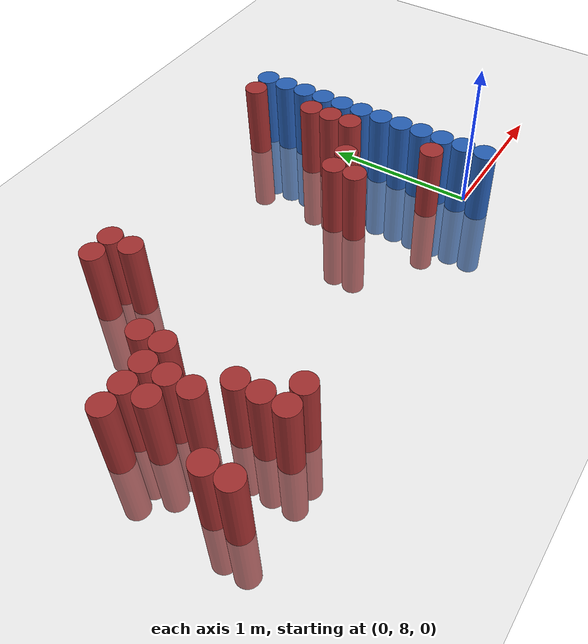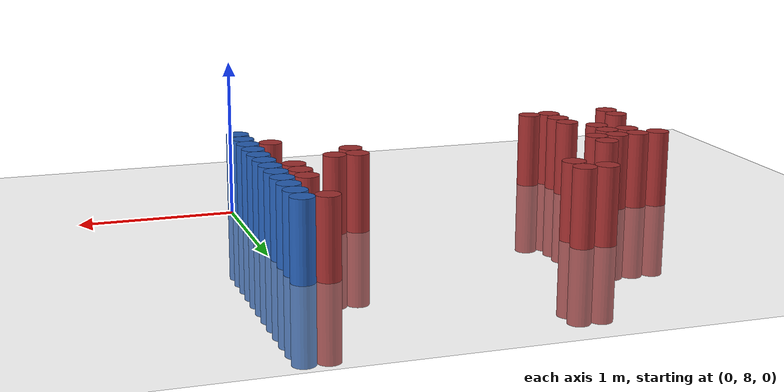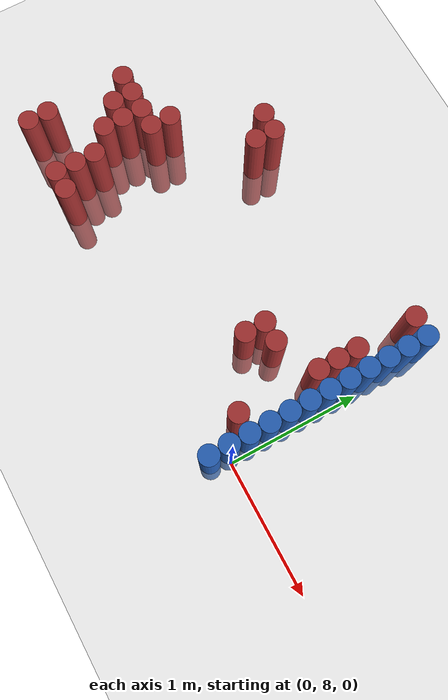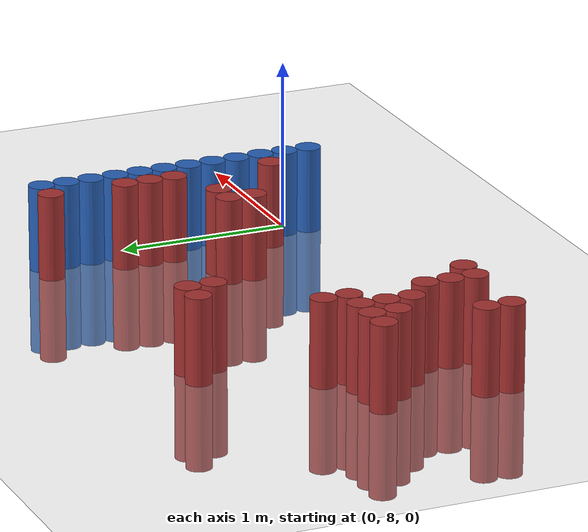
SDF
<sdf version="1.6">
 <world name="default">
  <model name="ground_plane">
   <static>1</static>
   <link name="link">
    <collision name="collision">
     <geometry><plane><normal>0 0 1</normal><size>100 100</size></plane></geometry>
     <surface><friction><ode><mu>100</mu><mu2>50</mu2></ode></friction></surface>
    </collision>
    <visual name="visual">
     <cast_shadows>0</cast_shadows>
     <geometry><plane><normal>0 0 1</normal><size>100 100</size></plane></geometry>
     <material>
      <script><uri>file://media/materials/scripts/gazebo.material</uri><name>Gazebo/Grey</name></script>
     </material>
    </visual>
   </link>
  </model>
  <model name="unit_cylinder_208">
   <static>1</static>
   <pose>-2.775000 7.875000 0.000000 0.000000 0.000000 0.000000</pose>
   <link name="link">
    <inertial>
     <mass>1</mass>
     <inertia><ixx>0.145833</ixx><ixy>0</ixy><ixz>0</ixz><iyy>0.145833</iyy><iyz>0</iyz><izz>0.125</izz></inertia>
    </inertial>
    <collision name="collision">
     <geometry><cylinder><radius>0.075000</radius><length>1</length></cylinder></geometry>
    </collision>
    <visual name="visual">
     <geometry><cylinder><radius>0.075000</radius><length>1</length></cylinder></geometry>
     <material>
      <ambient>0.648000 0.192000 0.192000 1</ambient>
      <diffuse>0.648000 0.192000 0.192000 1</diffuse>
     </material>
     <material>
      <script><name>Gazebo/Grey</name><uri>file://media/materials/scripts/gazebo.material</uri></script>
     </material>
    </visual>
    <sensor name="sensor_contact" type="contact"><contact><collision>collision</collision></contact></sensor>
   </link>
   <plugin filename="gz-sim-touchplugin-system" name="gz::sim::systems::TouchPlugin">
    <target>robot</target>
    <namespace>robot</namespace>
    <time>0.001</time>
    <enabled>true</enabled>
   </plugin>
  </model>
  <model name="unit_cylinder_209">
   <static>1</static>
   <pose>-2.775000 8.025000 0.000000 0.000000 0.000000 0.000000</pose>
   <link name="link">
    <inertial>
     <mass>1</mass>
     <inertia><ixx>0.145833</ixx><ixy>0</ixy><ixz>0</ixz><iyy>0.145833</iyy><iyz>0</iyz><izz>0.125</izz></inertia>
    </inertial>
    <collision name="collision">
     <geometry><cylinder><radius>0.075000</radius><length>1</length></cylinder></geometry>
    </collision>
    <visual name="visual">
     <geometry><cylinder><radius>0.075000</radius><length>1</length></cylinder></geometry>
     <material>
      <ambient>0.648000 0.192000 0.192000 1</ambient>
      <diffuse>0.648000 0.192000 0.192000 1</diffuse>
     </material>
     <material>
      <script><name>Gazebo/Grey</name><uri>file://media/materials/scripts/gazebo.material</uri></script>
     </material>
    </visual>
    <sensor name="sensor_contact" type="contact"><contact><collision>collision</collision></contact></sensor>
   </link>
   <plugin filename="gz-sim-touchplugin-system" name="gz::sim::systems::TouchPlugin">
    <target>robot</target>
    <namespace>robot</namespace>
    <time>0.001</time>
    <enabled>true</enabled>
   </plugin>
  </model>
  <model name="unit_cylinder_210">
   <static>1</static>
   <pose>-2.775000 8.625000 0.000000 0.000000 0.000000 0.000000</pose>
   <link name="link">
    <inertial>
     <mass>1</mass>
     <inertia><ixx>0.145833</ixx><ixy>0</ixy><ixz>0</ixz><iyy>0.145833</iyy><iyz>0</iyz><izz>0.125</izz></inertia>
    </inertial>
    <collision name="collision">
     <geometry><cylinder><radius>0.075000</radius><length>1</length></cylinder></geometry>
    </collision>
    <visual name="visual">
     <geometry><cylinder><radius>0.075000</radius><length>1</length></cylinder></geometry>
     <material>
      <ambient>0.648000 0.192000 0.192000 1</ambient>
      <diffuse>0.648000 0.192000 0.192000 1</diffuse>
     </material>
     <material>
      <script><name>Gazebo/Grey</name><uri>file://media/materials/scripts/gazebo.material</uri></script>
     </material>
    </visual>
    <sensor name="sensor_contact" type="contact"><contact><collision>collision</collision></contact></sensor>
   </link>
   <plugin filename="gz-sim-touchplugin-system" name="gz::sim::systems::TouchPlugin">
    <target>robot</target>
    <namespace>robot</namespace>
    <time>0.001</time>
    <enabled>true</enabled>
   </plugin>
  </model>
  <model name="unit_cylinder_214">
   <static>1</static>
   <pose>-2.625000 8.475000 0.000000 0.000000 0.000000 0.000000</pose>
   <link name="link">
    <inertial>
     <mass>1</mass>
     <inertia><ixx>0.145833</ixx><ixy>0</ixy><ixz>0</ixz><iyy>0.145833</iyy><iyz>0</iyz><izz>0.125</izz></inertia>
    </inertial>
    <collision name="collision">
     <geometry><cylinder><radius>0.075000</radius><length>1</length></cylinder></geometry>
    </collision>
    <visual name="visual">
     <geometry><cylinder><radius>0.075000</radius><length>1</length></cylinder></geometry>
     <material>
      <ambient>0.648000 0.192000 0.192000 1</ambient>
      <diffuse>0.648000 0.192000 0.192000 1</diffuse>
     </material>
     <material>
      <script><name>Gazebo/Grey</name><uri>file://media/materials/scripts/gazebo.material</uri></script>
     </material>
    </visual>
    <sensor name="sensor_contact" type="contact"><contact><collision>collision</collision></contact></sensor>
   </link>
   <plugin filename="gz-sim-touchplugin-system" name="gz::sim::systems::TouchPlugin">
    <target>robot</target>
    <namespace>robot</namespace>
    <time>0.001</time>
    <enabled>true</enabled>
   </plugin>
  </model>
  <model name="unit_cylinder_215">
   <static>1</static>
   <pose>-2.625000 8.625000 0.000000 0.000000 0.000000 0.000000</pose>
   <link name="link">
    <inertial>
     <mass>1</mass>
     <inertia><ixx>0.145833</ixx><ixy>0</ixy><ixz>0</ixz><iyy>0.145833</iyy><iyz>0</iyz><izz>0.125</izz></inertia>
    </inertial>
    <collision name="collision">
     <geometry><cylinder><radius>0.075000</radius><length>1</length></cylinder></geometry>
    </collision>
    <visual name="visual">
     <geometry><cylinder><radius>0.075000</radius><length>1</length></cylinder></geometry>
     <material>
      <ambient>0.648000 0.192000 0.192000 1</ambient>
      <diffuse>0.648000 0.192000 0.192000 1</diffuse>
     </material>
     <material>
      <script><name>Gazebo/Grey</name><uri>file://media/materials/scripts/gazebo.material</uri></script>
     </material>
    </visual>
    <sensor name="sensor_contact" type="contact"><contact><collision>collision</collision></contact></sensor>
   </link>
   <plugin filename="gz-sim-touchplugin-system" name="gz::sim::systems::TouchPlugin">
    <target>robot</target>
    <namespace>robot</namespace>
    <time>0.001</time>
    <enabled>true</enabled>
   </plugin>
  </model>
  <model name="unit_cylinder_216">
   <static>1</static>
   <pose>-2.475000 8.325000 0.000000 0.000000 0.000000 0.000000</pose>
   <link name="link">
    <inertial>
     <mass>1</mass>
     <inertia><ixx>0.145833</ixx><ixy>0</ixy><ixz>0</ixz><iyy>0.145833</iyy><iyz>0</iyz><izz>0.125</izz></inertia>
    </inertial>
    <collision name="collision">
     <geometry><cylinder><radius>0.075000</radius><length>1</length></cylinder></geometry>
    </collision>
    <visual name="visual">
     <geometry><cylinder><radius>0.075000</radius><length>1</length></cylinder></geometry>
     <material>
      <ambient>0.648000 0.192000 0.192000 1</ambient>
      <diffuse>0.648000 0.192000 0.192000 1</diffuse>
     </material>
     <material>
      <script><name>Gazebo/Grey</name><uri>file://media/materials/scripts/gazebo.material</uri></script>
     </material>
    </visual>
    <sensor name="sensor_contact" type="contact"><contact><collision>collision</collision></contact></sensor>
   </link>
   <plugin filename="gz-sim-touchplugin-system" name="gz::sim::systems::TouchPlugin">
    <target>robot</target>
    <namespace>robot</namespace>
    <time>0.001</time>
    <enabled>true</enabled>
   </plugin>
  </model>
  <model name="unit_cylinder_217">
   <static>1</static>
   <pose>-2.475000 8.475000 0.000000 0.000000 0.000000 0.000000</pose>
   <link name="link">
    <inertial>
     <mass>1</mass>
     <inertia><ixx>0.145833</ixx><ixy>0</ixy><ixz>0</ixz><iyy>0.145833</iyy><iyz>0</iyz><izz>0.125</izz></inertia>
    </inertial>
    <collision name="collision">
     <geometry><cylinder><radius>0.075000</radius><length>1</length></cylinder></geometry>
    </collision>
    <visual name="visual">
     <geometry><cylinder><radius>0.075000</radius><length>1</length></cylinder></geometry>
     <material>
      <ambient>0.648000 0.192000 0.192000 1</ambient>
      <diffuse>0.648000 0.192000 0.192000 1</diffuse>
     </material>
     <material>
      <script><name>Gazebo/Grey</name><uri>file://media/materials/scripts/gazebo.material</uri></script>
     </material>
    </visual>
    <sensor name="sensor_contact" type="contact"><contact><collision>collision</collision></contact></sensor>
   </link>
   <plugin filename="gz-sim-touchplugin-system" name="gz::sim::systems::TouchPlugin">
    <target>robot</target>
    <namespace>robot</namespace>
    <time>0.001</time>
    <enabled>true</enabled>
   </plugin>
  </model>
  <model name="unit_cylinder_218">
   <static>1</static>
   <pose>-2.475000 8.625000 0.000000 0.000000 0.000000 0.000000</pose>
   <link name="link">
    <inertial>
     <mass>1</mass>
     <inertia><ixx>0.145833</ixx><ixy>0</ixy><ixz>0</ixz><iyy>0.145833</iyy><iyz>0</iyz><izz>0.125</izz></inertia>
    </inertial>
    <collision name="collision">
     <geometry><cylinder><radius>0.075000</radius><length>1</length></cylinder></geometry>
    </collision>
    <visual name="visual">
     <geometry><cylinder><radius>0.075000</radius><length>1</length></cylinder></geometry>
     <material>
      <ambient>0.648000 0.192000 0.192000 1</ambient>
      <diffuse>0.648000 0.192000 0.192000 1</diffuse>
     </material>
     <material>
      <script><name>Gazebo/Grey</name><uri>file://media/materials/scripts/gazebo.material</uri></script>
     </material>
    </visual>
    <sensor name="sensor_contact" type="contact"><contact><collision>collision</collision></contact></sensor>
   </link>
   <plugin filename="gz-sim-touchplugin-system" name="gz::sim::systems::TouchPlugin">
    <target>robot</target>
    <namespace>robot</namespace>
    <time>0.001</time>
    <enabled>true</enabled>
   </plugin>
  </model>
  <model name="unit_cylinder_219">
   <static>1</static>
   <pose>-2.325000 7.875000 0.000000 0.000000 0.000000 0.000000</pose>
   <link name="link">
    <inertial>
     <mass>1</mass>
     <inertia><ixx>0.145833</ixx><ixy>0</ixy><ixz>0</ixz><iyy>0.145833</iyy><iyz>0</iyz><izz>0.125</izz></inertia>
    </inertial>
    <collision name="collision">
     <geometry><cylinder><radius>0.075000</radius><length>1</length></cylinder></geometry>
    </collision>
    <visual name="visual">
     <geometry><cylinder><radius>0.075000</radius><length>1</length></cylinder></geometry>
     <material>
      <ambient>0.648000 0.192000 0.192000 1</ambient>
      <diffuse>0.648000 0.192000 0.192000 1</diffuse>
     </material>
     <material>
      <script><name>Gazebo/Grey</name><uri>file://media/materials/scripts/gazebo.material</uri></script>
     </material>
    </visual>
    <sensor name="sensor_contact" type="contact"><contact><collision>collision</collision></contact></sensor>
   </link>
   <plugin filename="gz-sim-touchplugin-system" name="gz::sim::systems::TouchPlugin">
    <target>robot</target>
    <namespace>robot</namespace>
    <time>0.001</time>
    <enabled>true</enabled>
   </plugin>
  </model>
  <model name="unit_cylinder_220">
   <static>1</static>
   <pose>-2.325000 8.025000 0.000000 0.000000 0.000000 0.000000</pose>
   <link name="link">
    <inertial>
     <mass>1</mass>
     <inertia><ixx>0.145833</ixx><ixy>0</ixy><ixz>0</ixz><iyy>0.145833</iyy><iyz>0</iyz><izz>0.125</izz></inertia>
    </inertial>
    <collision name="collision">
     <geometry><cylinder><radius>0.075000</radius><length>1</length></cylinder></geometry>
    </collision>
    <visual name="visual">
     <geometry><cylinder><radius>0.075000</radius><length>1</length></cylinder></geometry>
     <material>
      <ambient>0.648000 0.192000 0.192000 1</ambient>
      <diffuse>0.648000 0.192000 0.192000 1</diffuse>
     </material>
     <material>
      <script><name>Gazebo/Grey</name><uri>file://media/materials/scripts/gazebo.material</uri></script>
     </material>
    </visual>
    <sensor name="sensor_contact" type="contact"><contact><collision>collision</collision></contact></sensor>
   </link>
   <plugin filename="gz-sim-touchplugin-system" name="gz::sim::systems::TouchPlugin">
    <target>robot</target>
    <namespace>robot</namespace>
    <time>0.001</time>
    <enabled>true</enabled>
   </plugin>
  </model>
  <model name="unit_cylinder_221">
   <static>1</static>
   <pose>-2.325000 8.175000 0.000000 0.000000 0.000000 0.000000</pose>
   <link name="link">
    <inertial>
     <mass>1</mass>
     <inertia><ixx>0.145833</ixx><ixy>0</ixy><ixz>0</ixz><iyy>0.145833</iyy><iyz>0</iyz><izz>0.125</izz></inertia>
    </inertial>
    <collision name="collision">
     <geometry><cylinder><radius>0.075000</radius><length>1</length></cylinder></geometry>
    </collision>
    <visual name="visual">
     <geometry><cylinder><radius>0.075000</radius><length>1</length></cylinder></geometry>
     <material>
      <ambient>0.648000 0.192000 0.192000 1</ambient>
      <diffuse>0.648000 0.192000 0.192000 1</diffuse>
     </material>
     <material>
      <script><name>Gazebo/Grey</name><uri>file://media/materials/scripts/gazebo.material</uri></script>
     </material>
    </visual>
    <sensor name="sensor_contact" type="contact"><contact><collision>collision</collision></contact></sensor>
   </link>
   <plugin filename="gz-sim-touchplugin-system" name="gz::sim::systems::TouchPlugin">
    <target>robot</target>
    <namespace>robot</namespace>
    <time>0.001</time>
    <enabled>true</enabled>
   </plugin>
  </model>
  <model name="unit_cylinder_222">
   <static>1</static>
   <pose>-2.325000 8.625000 0.000000 0.000000 0.000000 0.000000</pose>
   <link name="link">
    <inertial>
     <mass>1</mass>
     <inertia><ixx>0.145833</ixx><ixy>0</ixy><ixz>0</ixz><iyy>0.145833</iyy><iyz>0</iyz><izz>0.125</izz></inertia>
    </inertial>
    <collision name="collision">
     <geometry><cylinder><radius>0.075000</radius><length>1</length></cylinder></geometry>
    </collision>
    <visual name="visual">
     <geometry><cylinder><radius>0.075000</radius><length>1</length></cylinder></geometry>
     <material>
      <ambient>0.648000 0.192000 0.192000 1</ambient>
      <diffuse>0.648000 0.192000 0.192000 1</diffuse>
     </material>
     <material>
      <script><name>Gazebo/Grey</name><uri>file://media/materials/scripts/gazebo.material</uri></script>
     </material>
    </visual>
    <sensor name="sensor_contact" type="contact"><contact><collision>collision</collision></contact></sensor>
   </link>
   <plugin filename="gz-sim-touchplugin-system" name="gz::sim::systems::TouchPlugin">
    <target>robot</target>
    <namespace>robot</namespace>
    <time>0.001</time>
    <enabled>true</enabled>
   </plugin>
  </model>
  <model name="unit_cylinder_223">
   <static>1</static>
   <pose>-2.325000 8.775000 0.000000 0.000000 0.000000 0.000000</pose>
   <link name="link">
    <inertial>
     <mass>1</mass>
     <inertia><ixx>0.145833</ixx><ixy>0</ixy><ixz>0</ixz><iyy>0.145833</iyy><iyz>0</iyz><izz>0.125</izz></inertia>
    </inertial>
    <collision name="collision">
     <geometry><cylinder><radius>0.075000</radius><length>1</length></cylinder></geometry>
    </collision>
    <visual name="visual">
     <geometry><cylinder><radius>0.075000</radius><length>1</length></cylinder></geometry>
     <material>
      <ambient>0.648000 0.192000 0.192000 1</ambient>
      <diffuse>0.648000 0.192000 0.192000 1</diffuse>
     </material>
     <material>
      <script><name>Gazebo/Grey</name><uri>file://media/materials/scripts/gazebo.material</uri></script>
     </material>
    </visual>
    <sensor name="sensor_contact" type="contact"><contact><collision>collision</collision></contact></sensor>
   </link>
   <plugin filename="gz-sim-touchplugin-system" name="gz::sim::systems::TouchPlugin">
    <target>robot</target>
    <namespace>robot</namespace>
    <time>0.001</time>
    <enabled>true</enabled>
   </plugin>
  </model>
  <model name="unit_cylinder_225">
   <static>1</static>
   <pose>-2.175000 7.875000 0.000000 0.000000 0.000000 0.000000</pose>
   <link name="link">
    <inertial>
     <mass>1</mass>
     <inertia><ixx>0.145833</ixx><ixy>0</ixy><ixz>0</ixz><iyy>0.145833</iyy><iyz>0</iyz><izz>0.125</izz></inertia>
    </inertial>
    <collision name="collision">
     <geometry><cylinder><radius>0.075000</radius><length>1</length></cylinder></geometry>
    </collision>
    <visual name="visual">
     <geometry><cylinder><radius>0.075000</radius><length>1</length></cylinder></geometry>
     <material>
      <ambient>0.648000 0.192000 0.192000 1</ambient>
      <diffuse>0.648000 0.192000 0.192000 1</diffuse>
     </material>
     <material>
      <script><name>Gazebo/Grey</name><uri>file://media/materials/scripts/gazebo.material</uri></script>
     </material>
    </visual>
    <sensor name="sensor_contact" type="contact"><contact><collision>collision</collision></contact></sensor>
   </link>
   <plugin filename="gz-sim-touchplugin-system" name="gz::sim::systems::TouchPlugin">
    <target>robot</target>
    <namespace>robot</namespace>
    <time>0.001</time>
    <enabled>true</enabled>
   </plugin>
  </model>
  <model name="unit_cylinder_227">
   <static>1</static>
   <pose>-2.025000 9.375000 0.000000 0.000000 0.000000 0.000000</pose>
   <link name="link">
    <inertial>
     <mass>1</mass>
     <inertia><ixx>0.145833</ixx><ixy>0</ixy><ixz>0</ixz><iyy>0.145833</iyy><iyz>0</iyz><izz>0.125</izz></inertia>
    </inertial>
    <collision name="collision">
     <geometry><cylinder><radius>0.075000</radius><length>1</length></cylinder></geometry>
    </collision>
    <visual name="visual">
     <geometry><cylinder><radius>0.075000</radius><length>1</length></cylinder></geometry>
     <material>
      <ambient>0.648000 0.192000 0.192000 1</ambient>
      <diffuse>0.648000 0.192000 0.192000 1</diffuse>
     </material>
     <material>
      <script><name>Gazebo/Grey</name><uri>file://media/materials/scripts/gazebo.material</uri></script>
     </material>
    </visual>
    <sensor name="sensor_contact" type="contact"><contact><collision>collision</collision></contact></sensor>
   </link>
   <plugin filename="gz-sim-touchplugin-system" name="gz::sim::systems::TouchPlugin">
    <target>robot</target>
    <namespace>robot</namespace>
    <time>0.001</time>
    <enabled>true</enabled>
   </plugin>
  </model>
  <model name="unit_cylinder_228">
   <static>1</static>
   <pose>-1.875000 9.225000 0.000000 0.000000 0.000000 0.000000</pose>
   <link name="link">
    <inertial>
     <mass>1</mass>
     <inertia><ixx>0.145833</ixx><ixy>0</ixy><ixz>0</ixz><iyy>0.145833</iyy><iyz>0</iyz><izz>0.125</izz></inertia>
    </inertial>
    <collision name="collision">
     <geometry><cylinder><radius>0.075000</radius><length>1</length></cylinder></geometry>
    </collision>
    <visual name="visual">
     <geometry><cylinder><radius>0.075000</radius><length>1</length></cylinder></geometry>
     <material>
      <ambient>0.648000 0.192000 0.192000 1</ambient>
      <diffuse>0.648000 0.192000 0.192000 1</diffuse>
     </material>
     <material>
      <script><name>Gazebo/Grey</name><uri>file://media/materials/scripts/gazebo.material</uri></script>
     </material>
    </visual>
    <sensor name="sensor_contact" type="contact"><contact><collision>collision</collision></contact></sensor>
   </link>
   <plugin filename="gz-sim-touchplugin-system" name="gz::sim::systems::TouchPlugin">
    <target>robot</target>
    <namespace>robot</namespace>
    <time>0.001</time>
    <enabled>true</enabled>
   </plugin>
  </model>
  <model name="unit_cylinder_229">
   <static>1</static>
   <pose>-1.875000 9.375000 0.000000 0.000000 0.000000 0.000000</pose>
   <link name="link">
    <inertial>
     <mass>1</mass>
     <inertia><ixx>0.145833</ixx><ixy>0</ixy><ixz>0</ixz><iyy>0.145833</iyy><iyz>0</iyz><izz>0.125</izz></inertia>
    </inertial>
    <collision name="collision">
     <geometry><cylinder><radius>0.075000</radius><length>1</length></cylinder></geometry>
    </collision>
    <visual name="visual">
     <geometry><cylinder><radius>0.075000</radius><length>1</length></cylinder></geometry>
     <material>
      <ambient>0.648000 0.192000 0.192000 1</ambient>
      <diffuse>0.648000 0.192000 0.192000 1</diffuse>
     </material>
     <material>
      <script><name>Gazebo/Grey</name><uri>file://media/materials/scripts/gazebo.material</uri></script>
     </material>
    </visual>
    <sensor name="sensor_contact" type="contact"><contact><collision>collision</collision></contact></sensor>
   </link>
   <plugin filename="gz-sim-touchplugin-system" name="gz::sim::systems::TouchPlugin">
    <target>robot</target>
    <namespace>robot</namespace>
    <time>0.001</time>
    <enabled>true</enabled>
   </plugin>
  </model>
  <model name="unit_cylinder_242">
   <static>1</static>
   <pose>-0.675000 8.475000 0.000000 0.000000 0.000000 0.000000</pose>
   <link name="link">
    <inertial>
     <mass>1</mass>
     <inertia><ixx>0.145833</ixx><ixy>0</ixy><ixz>0</ixz><iyy>0.145833</iyy><iyz>0</iyz><izz>0.125</izz></inertia>
    </inertial>
    <collision name="collision">
     <geometry><cylinder><radius>0.075000</radius><length>1</length></cylinder></geometry>
    </collision>
    <visual name="visual">
     <geometry><cylinder><radius>0.075000</radius><length>1</length></cylinder></geometry>
     <material>
      <ambient>0.648000 0.192000 0.192000 1</ambient>
      <diffuse>0.648000 0.192000 0.192000 1</diffuse>
     </material>
     <material>
      <script><name>Gazebo/Grey</name><uri>file://media/materials/scripts/gazebo.material</uri></script>
     </material>
    </visual>
    <sensor name="sensor_contact" type="contact"><contact><collision>collision</collision></contact></sensor>
   </link>
   <plugin filename="gz-sim-touchplugin-system" name="gz::sim::systems::TouchPlugin">
    <target>robot</target>
    <namespace>robot</namespace>
    <time>0.001</time>
    <enabled>true</enabled>
   </plugin>
  </model>
  <model name="unit_cylinder_243">
   <static>1</static>
   <pose>-0.675000 8.625000 0.000000 0.000000 0.000000 0.000000</pose>
   <link name="link">
    <inertial>
     <mass>1</mass>
     <inertia><ixx>0.145833</ixx><ixy>0</ixy><ixz>0</ixz><iyy>0.145833</iyy><iyz>0</iyz><izz>0.125</izz></inertia>
    </inertial>
    <collision name="collision">
     <geometry><cylinder><radius>0.075000</radius><length>1</length></cylinder></geometry>
    </collision>
    <visual name="visual">
     <geometry><cylinder><radius>0.075000</radius><length>1</length></cylinder></geometry>
     <material>
      <ambient>0.648000 0.192000 0.192000 1</ambient>
      <diffuse>0.648000 0.192000 0.192000 1</diffuse>
     </material>
     <material>
      <script><name>Gazebo/Grey</name><uri>file://media/materials/scripts/gazebo.material</uri></script>
     </material>
    </visual>
    <sensor name="sensor_contact" type="contact"><contact><collision>collision</collision></contact></sensor>
   </link>
   <plugin filename="gz-sim-touchplugin-system" name="gz::sim::systems::TouchPlugin">
    <target>robot</target>
    <namespace>robot</namespace>
    <time>0.001</time>
    <enabled>true</enabled>
   </plugin>
  </model>
  <model name="unit_cylinder_247">
   <static>1</static>
   <pose>-0.525000 8.625000 0.000000 0.000000 0.000000 0.000000</pose>
   <link name="link">
    <inertial>
     <mass>1</mass>
     <inertia><ixx>0.145833</ixx><ixy>0</ixy><ixz>0</ixz><iyy>0.145833</iyy><iyz>0</iyz><izz>0.125</izz></inertia>
    </inertial>
    <collision name="collision">
     <geometry><cylinder><radius>0.075000</radius><length>1</length></cylinder></geometry>
    </collision>
    <visual name="visual">
     <geometry><cylinder><radius>0.075000</radius><length>1</length></cylinder></geometry>
     <material>
      <ambient>0.648000 0.192000 0.192000 1</ambient>
      <diffuse>0.648000 0.192000 0.192000 1</diffuse>
     </material>
     <material>
      <script><name>Gazebo/Grey</name><uri>file://media/materials/scripts/gazebo.material</uri></script>
     </material>
    </visual>
    <sensor name="sensor_contact" type="contact"><contact><collision>collision</collision></contact></sensor>
   </link>
   <plugin filename="gz-sim-touchplugin-system" name="gz::sim::systems::TouchPlugin">
    <target>robot</target>
    <namespace>robot</namespace>
    <time>0.001</time>
    <enabled>true</enabled>
   </plugin>
  </model>
  <model name="unit_cylinder_256">
   <static>1</static>
   <pose>-0.225000 8.175000 0.000000 0.000000 0.000000 0.000000</pose>
   <link name="link">
    <inertial>
     <mass>1</mass>
     <inertia><ixx>0.145833</ixx><ixy>0</ixy><ixz>0</ixz><iyy>0.145833</iyy><iyz>0</iyz><izz>0.125</izz></inertia>
    </inertial>
    <collision name="collision">
     <geometry><cylinder><radius>0.075000</radius><length>1</length></cylinder></geometry>
    </collision>
    <visual name="visual">
     <geometry><cylinder><radius>0.075000</radius><length>1</length></cylinder></geometry>
     <material>
      <ambient>0.648000 0.192000 0.192000 1</ambient>
      <diffuse>0.648000 0.192000 0.192000 1</diffuse>
     </material>
     <material>
      <script><name>Gazebo/Grey</name><uri>file://media/materials/scripts/gazebo.material</uri></script>
     </material>
    </visual>
    <sensor name="sensor_contact" type="contact"><contact><collision>collision</collision></contact></sensor>
   </link>
   <plugin filename="gz-sim-touchplugin-system" name="gz::sim::systems::TouchPlugin">
    <target>robot</target>
    <namespace>robot</namespace>
    <time>0.001</time>
    <enabled>true</enabled>
   </plugin>
  </model>
  <model name="unit_cylinder_257">
   <static>1</static>
   <pose>-0.225000 8.775000 0.000000 0.000000 0.000000 0.000000</pose>
   <link name="link">
    <inertial>
     <mass>1</mass>
     <inertia><ixx>0.145833</ixx><ixy>0</ixy><ixz>0</ixz><iyy>0.145833</iyy><iyz>0</iyz><izz>0.125</izz></inertia>
    </inertial>
    <collision name="collision">
     <geometry><cylinder><radius>0.075000</radius><length>1</length></cylinder></geometry>
    </collision>
    <visual name="visual">
     <geometry><cylinder><radius>0.075000</radius><length>1</length></cylinder></geometry>
     <material>
      <ambient>0.648000 0.192000 0.192000 1</ambient>
      <diffuse>0.648000 0.192000 0.192000 1</diffuse>
     </material>
     <material>
      <script><name>Gazebo/Grey</name><uri>file://media/materials/scripts/gazebo.material</uri></script>
     </material>
    </visual>
    <sensor name="sensor_contact" type="contact"><contact><collision>collision</collision></contact></sensor>
   </link>
   <plugin filename="gz-sim-touchplugin-system" name="gz::sim::systems::TouchPlugin">
    <target>robot</target>
    <namespace>robot</namespace>
    <time>0.001</time>
    <enabled>true</enabled>
   </plugin>
  </model>
  <model name="unit_cylinder_258">
   <static>1</static>
   <pose>-0.225000 8.925000 0.000000 0.000000 0.000000 0.000000</pose>
   <link name="link">
    <inertial>
     <mass>1</mass>
     <inertia><ixx>0.145833</ixx><ixy>0</ixy><ixz>0</ixz><iyy>0.145833</iyy><iyz>0</iyz><izz>0.125</izz></inertia>
    </inertial>
    <collision name="collision">
     <geometry><cylinder><radius>0.075000</radius><length>1</length></cylinder></geometry>
    </collision>
    <visual name="visual">
     <geometry><cylinder><radius>0.075000</radius><length>1</length></cylinder></geometry>
     <material>
      <ambient>0.648000 0.192000 0.192000 1</ambient>
      <diffuse>0.648000 0.192000 0.192000 1</diffuse>
     </material>
     <material>
      <script><name>Gazebo/Grey</name><uri>file://media/materials/scripts/gazebo.material</uri></script>
     </material>
    </visual>
    <sensor name="sensor_contact" type="contact"><contact><collision>collision</collision></contact></sensor>
   </link>
   <plugin filename="gz-sim-touchplugin-system" name="gz::sim::systems::TouchPlugin">
    <target>robot</target>
    <namespace>robot</namespace>
    <time>0.001</time>
    <enabled>true</enabled>
   </plugin>
  </model>
  <model name="unit_cylinder_259">
   <static>1</static>
   <pose>-0.225000 9.075000 0.000000 0.000000 0.000000 0.000000</pose>
   <link name="link">
    <inertial>
     <mass>1</mass>
     <inertia><ixx>0.145833</ixx><ixy>0</ixy><ixz>0</ixz><iyy>0.145833</iyy><iyz>0</iyz><izz>0.125</izz></inertia>
    </inertial>
    <collision name="collision">
     <geometry><cylinder><radius>0.075000</radius><length>1</length></cylinder></geometry>
    </collision>
    <visual name="visual">
     <geometry><cylinder><radius>0.075000</radius><length>1</length></cylinder></geometry>
     <material>
      <ambient>0.648000 0.192000 0.192000 1</ambient>
      <diffuse>0.648000 0.192000 0.192000 1</diffuse>
     </material>
     <material>
      <script><name>Gazebo/Grey</name><uri>file://media/materials/scripts/gazebo.material</uri></script>
     </material>
    </visual>
    <sensor name="sensor_contact" type="contact"><contact><collision>collision</collision></contact></sensor>
   </link>
   <plugin filename="gz-sim-touchplugin-system" name="gz::sim::systems::TouchPlugin">
    <target>robot</target>
    <namespace>robot</namespace>
    <time>0.001</time>
    <enabled>true</enabled>
   </plugin>
  </model>
  <model name="unit_cylinder_260">
   <static>1</static>
   <pose>-0.225000 9.525000 0.000000 0.000000 0.000000 0.000000</pose>
   <link name="link">
    <inertial>
     <mass>1</mass>
     <inertia><ixx>0.145833</ixx><ixy>0</ixy><ixz>0</ixz><iyy>0.145833</iyy><iyz>0</iyz><izz>0.125</izz></inertia>
    </inertial>
    <collision name="collision">
     <geometry><cylinder><radius>0.075000</radius><length>1</length></cylinder></geometry>
    </collision>
    <visual name="visual">
     <geometry><cylinder><radius>0.075000</radius><length>1</length></cylinder></geometry>
     <material>
      <ambient>0.648000 0.192000 0.192000 1</ambient>
      <diffuse>0.648000 0.192000 0.192000 1</diffuse>
     </material>
     <material>
      <script><name>Gazebo/Grey</name><uri>file://media/materials/scripts/gazebo.material</uri></script>
     </material>
    </visual>
    <sensor name="sensor_contact" type="contact"><contact><collision>collision</collision></contact></sensor>
   </link>
   <plugin filename="gz-sim-touchplugin-system" name="gz::sim::systems::TouchPlugin">
    <target>robot</target>
    <namespace>robot</namespace>
    <time>0.001</time>
    <enabled>true</enabled>
   </plugin>
  </model>
  <model name="unit_cylinder_279">
   <static>1</static>
   <pose>-0.075000 7.875000 0.000000 0.000000 0.000000 0.000000</pose>
   <link name="link">
    <inertial>
     <mass>1</mass>
     <inertia><ixx>0.145833</ixx><ixy>0</ixy><ixz>0</ixz><iyy>0.145833</iyy><iyz>0</iyz><izz>0.125</izz></inertia>
    </inertial>
    <collision name="collision">
     <geometry><cylinder><radius>0.075000</radius><length>1</length></cylinder></geometry>
    </collision>
    <visual name="visual">
     <geometry><cylinder><radius>0.075000</radius><length>1</length></cylinder></geometry>
     <material>
      <ambient>0.152000 0.379000 0.720000 1</ambient>
      <diffuse>0.152000 0.379000 0.720000 1</diffuse>
     </material>
     <material>
      <script><name>Gazebo/Grey</name><uri>file://media/materials/scripts/gazebo.material</uri></script>
     </material>
    </visual>
    <sensor name="sensor_contact" type="contact"><contact><collision>collision</collision></contact></sensor>
   </link>
   <plugin filename="gz-sim-touchplugin-system" name="gz::sim::systems::TouchPlugin">
    <target>robot</target>
    <namespace>robot</namespace>
    <time>0.001</time>
    <enabled>true</enabled>
   </plugin>
  </model>
  <model name="unit_cylinder_280">
   <static>1</static>
   <pose>-0.075000 8.025000 0.000000 0.000000 0.000000 0.000000</pose>
   <link name="link">
    <inertial>
     <mass>1</mass>
     <inertia><ixx>0.145833</ixx><ixy>0</ixy><ixz>0</ixz><iyy>0.145833</iyy><iyz>0</iyz><izz>0.125</izz></inertia>
    </inertial>
    <collision name="collision">
     <geometry><cylinder><radius>0.075000</radius><length>1</length></cylinder></geometry>
    </collision>
    <visual name="visual">
     <geometry><cylinder><radius>0.075000</radius><length>1</length></cylinder></geometry>
     <material>
      <ambient>0.152000 0.379000 0.720000 1</ambient>
      <diffuse>0.152000 0.379000 0.720000 1</diffuse>
     </material>
     <material>
      <script><name>Gazebo/Grey</name><uri>file://media/materials/scripts/gazebo.material</uri></script>
     </material>
    </visual>
    <sensor name="sensor_contact" type="contact"><contact><collision>collision</collision></contact></sensor>
   </link>
   <plugin filename="gz-sim-touchplugin-system" name="gz::sim::systems::TouchPlugin">
    <target>robot</target>
    <namespace>robot</namespace>
    <time>0.001</time>
    <enabled>true</enabled>
   </plugin>
  </model>
  <model name="unit_cylinder_281">
   <static>1</static>
   <pose>-0.075000 8.175000 0.000000 0.000000 0.000000 0.000000</pose>
   <link name="link">
    <inertial>
     <mass>1</mass>
     <inertia><ixx>0.145833</ixx><ixy>0</ixy><ixz>0</ixz><iyy>0.145833</iyy><iyz>0</iyz><izz>0.125</izz></inertia>
    </inertial>
    <collision name="collision">
     <geometry><cylinder><radius>0.075000</radius><length>1</length></cylinder></geometry>
    </collision>
    <visual name="visual">
     <geometry><cylinder><radius>0.075000</radius><length>1</length></cylinder></geometry>
     <material>
      <ambient>0.152000 0.379000 0.720000 1</ambient>
      <diffuse>0.152000 0.379000 0.720000 1</diffuse>
     </material>
     <material>
      <script><name>Gazebo/Grey</name><uri>file://media/materials/scripts/gazebo.material</uri></script>
     </material>
    </visual>
    <sensor name="sensor_contact" type="contact"><contact><collision>collision</collision></contact></sensor>
   </link>
   <plugin filename="gz-sim-touchplugin-system" name="gz::sim::systems::TouchPlugin">
    <target>robot</target>
    <namespace>robot</namespace>
    <time>0.001</time>
    <enabled>true</enabled>
   </plugin>
  </model>
  <model name="unit_cylinder_282">
   <static>1</static>
   <pose>-0.075000 8.325000 0.000000 0.000000 0.000000 0.000000</pose>
   <link name="link">
    <inertial>
     <mass>1</mass>
     <inertia><ixx>0.145833</ixx><ixy>0</ixy><ixz>0</ixz><iyy>0.145833</iyy><iyz>0</iyz><izz>0.125</izz></inertia>
    </inertial>
    <collision name="collision">
     <geometry><cylinder><radius>0.075000</radius><length>1</length></cylinder></geometry>
    </collision>
    <visual name="visual">
     <geometry><cylinder><radius>0.075000</radius><length>1</length></cylinder></geometry>
     <material>
      <ambient>0.152000 0.379000 0.720000 1</ambient>
      <diffuse>0.152000 0.379000 0.720000 1</diffuse>
     </material>
     <material>
      <script><name>Gazebo/Grey</name><uri>file://media/materials/scripts/gazebo.material</uri></script>
     </material>
    </visual>
    <sensor name="sensor_contact" type="contact"><contact><collision>collision</collision></contact></sensor>
   </link>
   <plugin filename="gz-sim-touchplugin-system" name="gz::sim::systems::TouchPlugin">
    <target>robot</target>
    <namespace>robot</namespace>
    <time>0.001</time>
    <enabled>true</enabled>
   </plugin>
  </model>
  <model name="unit_cylinder_283">
   <static>1</static>
   <pose>-0.075000 8.475000 0.000000 0.000000 0.000000 0.000000</pose>
   <link name="link">
    <inertial>
     <mass>1</mass>
     <inertia><ixx>0.145833</ixx><ixy>0</ixy><ixz>0</ixz><iyy>0.145833</iyy><iyz>0</iyz><izz>0.125</izz></inertia>
    </inertial>
    <collision name="collision">
     <geometry><cylinder><radius>0.075000</radius><length>1</length></cylinder></geometry>
    </collision>
    <visual name="visual">
     <geometry><cylinder><radius>0.075000</radius><length>1</length></cylinder></geometry>
     <material>
      <ambient>0.152000 0.379000 0.720000 1</ambient>
      <diffuse>0.152000 0.379000 0.720000 1</diffuse>
     </material>
     <material>
      <script><name>Gazebo/Grey</name><uri>file://media/materials/scripts/gazebo.material</uri></script>
     </material>
    </visual>
    <sensor name="sensor_contact" type="contact"><contact><collision>collision</collision></contact></sensor>
   </link>
   <plugin filename="gz-sim-touchplugin-system" name="gz::sim::systems::TouchPlugin">
    <target>robot</target>
    <namespace>robot</namespace>
    <time>0.001</time>
    <enabled>true</enabled>
   </plugin>
  </model>
  <model name="unit_cylinder_284">
   <static>1</static>
   <pose>-0.075000 8.625000 0.000000 0.000000 0.000000 0.000000</pose>
   <link name="link">
    <inertial>
     <mass>1</mass>
     <inertia><ixx>0.145833</ixx><ixy>0</ixy><ixz>0</ixz><iyy>0.145833</iyy><iyz>0</iyz><izz>0.125</izz></inertia>
    </inertial>
    <collision name="collision">
     <geometry><cylinder><radius>0.075000</radius><length>1</length></cylinder></geometry>
    </collision>
    <visual name="visual">
     <geometry><cylinder><radius>0.075000</radius><length>1</length></cylinder></geometry>
     <material>
      <ambient>0.152000 0.379000 0.720000 1</ambient>
      <diffuse>0.152000 0.379000 0.720000 1</diffuse>
     </material>
     <material>
      <script><name>Gazebo/Grey</name><uri>file://media/materials/scripts/gazebo.material</uri></script>
     </material>
    </visual>
    <sensor name="sensor_contact" type="contact"><contact><collision>collision</collision></contact></sensor>
   </link>
   <plugin filename="gz-sim-touchplugin-system" name="gz::sim::systems::TouchPlugin">
    <target>robot</target>
    <namespace>robot</namespace>
    <time>0.001</time>
    <enabled>true</enabled>
   </plugin>
  </model>
  <model name="unit_cylinder_285">
   <static>1</static>
   <pose>-0.075000 8.775000 0.000000 0.000000 0.000000 0.000000</pose>
   <link name="link">
    <inertial>
     <mass>1</mass>
     <inertia><ixx>0.145833</ixx><ixy>0</ixy><ixz>0</ixz><iyy>0.145833</iyy><iyz>0</iyz><izz>0.125</izz></inertia>
    </inertial>
    <collision name="collision">
     <geometry><cylinder><radius>0.075000</radius><length>1</length></cylinder></geometry>
    </collision>
    <visual name="visual">
     <geometry><cylinder><radius>0.075000</radius><length>1</length></cylinder></geometry>
     <material>
      <ambient>0.152000 0.379000 0.720000 1</ambient>
      <diffuse>0.152000 0.379000 0.720000 1</diffuse>
     </material>
     <material>
      <script><name>Gazebo/Grey</name><uri>file://media/materials/scripts/gazebo.material</uri></script>
     </material>
    </visual>
    <sensor name="sensor_contact" type="contact"><contact><collision>collision</collision></contact></sensor>
   </link>
   <plugin filename="gz-sim-touchplugin-system" name="gz::sim::systems::TouchPlugin">
    <target>robot</target>
    <namespace>robot</namespace>
    <time>0.001</time>
    <enabled>true</enabled>
   </plugin>
  </model>
  <model name="unit_cylinder_286">
   <static>1</static>
   <pose>-0.075000 8.925000 0.000000 0.000000 0.000000 0.000000</pose>
   <link name="link">
    <inertial>
     <mass>1</mass>
     <inertia><ixx>0.145833</ixx><ixy>0</ixy><ixz>0</ixz><iyy>0.145833</iyy><iyz>0</iyz><izz>0.125</izz></inertia>
    </inertial>
    <collision name="collision">
     <geometry><cylinder><radius>0.075000</radius><length>1</length></cylinder></geometry>
    </collision>
    <visual name="visual">
     <geometry><cylinder><radius>0.075000</radius><length>1</length></cylinder></geometry>
     <material>
      <ambient>0.152000 0.379000 0.720000 1</ambient>
      <diffuse>0.152000 0.379000 0.720000 1</diffuse>
     </material>
     <material>
      <script><name>Gazebo/Grey</name><uri>file://media/materials/scripts/gazebo.material</uri></script>
     </material>
    </visual>
    <sensor name="sensor_contact" type="contact"><contact><collision>collision</collision></contact></sensor>
   </link>
   <plugin filename="gz-sim-touchplugin-system" name="gz::sim::systems::TouchPlugin">
    <target>robot</target>
    <namespace>robot</namespace>
    <time>0.001</time>
    <enabled>true</enabled>
   </plugin>
  </model>
  <model name="unit_cylinder_287">
   <static>1</static>
   <pose>-0.075000 9.075000 0.000000 0.000000 0.000000 0.000000</pose>
   <link name="link">
    <inertial>
     <mass>1</mass>
     <inertia><ixx>0.145833</ixx><ixy>0</ixy><ixz>0</ixz><iyy>0.145833</iyy><iyz>0</iyz><izz>0.125</izz></inertia>
    </inertial>
    <collision name="collision">
     <geometry><cylinder><radius>0.075000</radius><length>1</length></cylinder></geometry>
    </collision>
    <visual name="visual">
     <geometry><cylinder><radius>0.075000</radius><length>1</length></cylinder></geometry>
     <material>
      <ambient>0.152000 0.379000 0.720000 1</ambient>
      <diffuse>0.152000 0.379000 0.720000 1</diffuse>
     </material>
     <material>
      <script><name>Gazebo/Grey</name><uri>file://media/materials/scripts/gazebo.material</uri></script>
     </material>
    </visual>
    <sensor name="sensor_contact" type="contact"><contact><collision>collision</collision></contact></sensor>
   </link>
   <plugin filename="gz-sim-touchplugin-system" name="gz::sim::systems::TouchPlugin">
    <target>robot</target>
    <namespace>robot</namespace>
    <time>0.001</time>
    <enabled>true</enabled>
   </plugin>
  </model>
  <model name="unit_cylinder_288">
   <static>1</static>
   <pose>-0.075000 9.225000 0.000000 0.000000 0.000000 0.000000</pose>
   <link name="link">
    <inertial>
     <mass>1</mass>
     <inertia><ixx>0.145833</ixx><ixy>0</ixy><ixz>0</ixz><iyy>0.145833</iyy><iyz>0</iyz><izz>0.125</izz></inertia>
    </inertial>
    <collision name="collision">
     <geometry><cylinder><radius>0.075000</radius><length>1</length></cylinder></geometry>
    </collision>
    <visual name="visual">
     <geometry><cylinder><radius>0.075000</radius><length>1</length></cylinder></geometry>
     <material>
      <ambient>0.152000 0.379000 0.720000 1</ambient>
      <diffuse>0.152000 0.379000 0.720000 1</diffuse>
     </material>
     <material>
      <script><name>Gazebo/Grey</name><uri>file://media/materials/scripts/gazebo.material</uri></script>
     </material>
    </visual>
    <sensor name="sensor_contact" type="contact"><contact><collision>collision</collision></contact></sensor>
   </link>
   <plugin filename="gz-sim-touchplugin-system" name="gz::sim::systems::TouchPlugin">
    <target>robot</target>
    <namespace>robot</namespace>
    <time>0.001</time>
    <enabled>true</enabled>
   </plugin>
  </model>
  <model name="unit_cylinder_289">
   <static>1</static>
   <pose>-0.075000 9.375000 0.000000 0.000000 0.000000 0.000000</pose>
   <link name="link">
    <inertial>
     <mass>1</mass>
     <inertia><ixx>0.145833</ixx><ixy>0</ixy><ixz>0</ixz><iyy>0.145833</iyy><iyz>0</iyz><izz>0.125</izz></inertia>
    </inertial>
    <collision name="collision">
     <geometry><cylinder><radius>0.075000</radius><length>1</length></cylinder></geometry>
    </collision>
    <visual name="visual">
     <geometry><cylinder><radius>0.075000</radius><length>1</length></cylinder></geometry>
     <material>
      <ambient>0.152000 0.379000 0.720000 1</ambient>
      <diffuse>0.152000 0.379000 0.720000 1</diffuse>
     </material>
     <material>
      <script><name>Gazebo/Grey</name><uri>file://media/materials/scripts/gazebo.material</uri></script>
     </material>
    </visual>
    <sensor name="sensor_contact" type="contact"><contact><collision>collision</collision></contact></sensor>
   </link>
   <plugin filename="gz-sim-touchplugin-system" name="gz::sim::systems::TouchPlugin">
    <target>robot</target>
    <namespace>robot</namespace>
    <time>0.001</time>
    <enabled>true</enabled>
   </plugin>
  </model>
  <model name="unit_cylinder_290">
   <static>1</static>
   <pose>-0.075000 9.525000 0.000000 0.000000 0.000000 0.000000</pose>
   <link name="link">
    <inertial>
     <mass>1</mass>
     <inertia><ixx>0.145833</ixx><ixy>0</ixy><ixz>0</ixz><iyy>0.145833</iyy><iyz>0</iyz><izz>0.125</izz></inertia>
    </inertial>
    <collision name="collision">
     <geometry><cylinder><radius>0.075000</radius><length>1</length></cylinder></geometry>
    </collision>
    <visual name="visual">
     <geometry><cylinder><radius>0.075000</radius><length>1</length></cylinder></geometry>
     <material>
      <ambient>0.152000 0.379000 0.720000 1</ambient>
      <diffuse>0.152000 0.379000 0.720000 1</diffuse>
     </material>
     <material>
      <script><name>Gazebo/Grey</name><uri>file://media/materials/scripts/gazebo.material</uri></script>
     </material>
    </visual>
    <sensor name="sensor_contact" type="contact"><contact><collision>collision</collision></contact></sensor>
   </link>
   <plugin filename="gz-sim-touchplugin-system" name="gz::sim::systems::TouchPlugin">
    <target>robot</target>
    <namespace>robot</namespace>
    <time>0.001</time>
    <enabled>true</enabled>
   </plugin>
  </model>
 </world>
</sdf>
